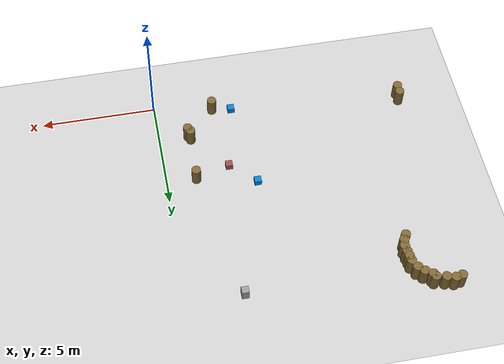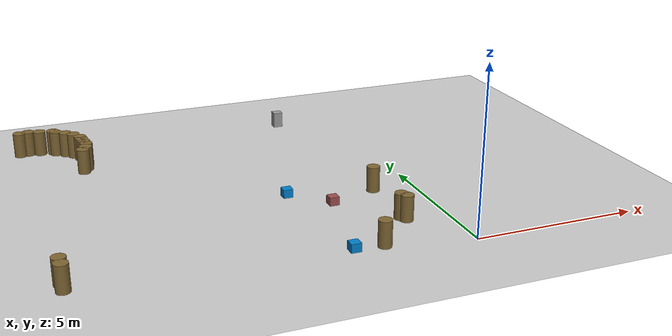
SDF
<sdf version="1.6">
 <world name="default">
  <model name="ground_plane">
   <static>1</static>
   <link name="link">
    <collision name="collision">
     <geometry><plane><normal>0 0 1</normal><size>100 100</size></plane></geometry>
     <surface><friction><ode><mu>100</mu><mu2>50</mu2></ode></friction></surface>
    </collision>
    <visual name="visual">
     <cast_shadows>0</cast_shadows>
     <geometry><plane><normal>0 0 1</normal><size>100 100</size></plane></geometry>
     <material>
      <script><uri>file://media/materials/scripts/gazebo.material</uri><name>Gazebo/Grey</name></script>
     </material>
    </visual>
   </link>
  </model>
  <model name="mini_cylinder_0_clone_0_clone_clone_clone_clone_0">
   <link name="link">
    <inertial>
     <mass>1</mass>
     <inertia><ixx>0.145833</ixx><ixy>0</ixy><ixz>0</ixz><iyy>0.145833</iyy><iyz>0</iyz><izz>0.125</izz></inertia>
    </inertial>
    <visual name="visual">
     <geometry><cylinder><radius>0.2</radius><length>0.8</length></cylinder></geometry>
     <material>
      <script><name>Gazebo/Grey</name><uri>file://media/materials/scripts/gazebo.material</uri></script>
      <shader type="vertex"><normal_map>__default__</normal_map></shader>
      <ambient>0.5 0.4 0.2 1</ambient>
      <diffuse>0.7 0.7 0.7 1</diffuse>
      <specular>0.01 0.01 0.01 1</specular>
      <emissive>0 0 0 1</emissive>
     </material>
    </visual>
    <collision name="collision">
     <geometry><cylinder><radius>0.2</radius><length>0.8</length></cylinder></geometry>
     <surface>
      <friction>
       <ode><mu>1</mu><mu2>1</mu2><fdir1>0 0 0</fdir1><slip1>0</slip1><slip2>0</slip2></ode>
       <torsional>
        <coefficient>1</coefficient>
        <patch_radius>0</patch_radius>
        <surface_radius>0</surface_radius>
        <use_patch_radius>1</use_patch_radius>
        <ode><slip>0</slip></ode>
       </torsional>
      </friction>
      <bounce><restitution_coefficient>0</restitution_coefficient><threshold>1e+06</threshold></bounce>
      <contact>
       <collide_without_contact>0</collide_without_contact>
       <collide_without_contact_bitmask>1</collide_without_contact_bitmask>
       <collide_bitmask>1</collide_bitmask>
       <ode>
        <soft_cfm>0</soft_cfm>
        <soft_erp>0.2</soft_erp>
        <kp>1e+13</kp>
        <kd>1</kd>
        <max_vel>0.01</max_vel>
        <min_depth>0</min_depth>
       </ode>
       <bullet>
        <split_impulse>1</split_impulse>
        <split_impulse_penetration_threshold>-0.01</split_impulse_penetration_threshold>
        <soft_cfm>0</soft_cfm>
        <soft_erp>0.2</soft_erp>
        <kp>1e+13</kp>
        <kd>1</kd>
       </bullet>
      </contact>
     </surface>
    </collision>
   </link>
   <static>1</static>
   <pose>-1.38762 1.98417 0.4 0 -0 0</pose>
  </model>
  <model name="mini_cylinder_0_clone_0_clone_clone_clone_clone_3">
   <link name="link">
    <inertial>
     <mass>1</mass>
     <inertia><ixx>0.145833</ixx><ixy>0</ixy><ixz>0</ixz><iyy>0.145833</iyy><iyz>0</iyz><izz>0.125</izz></inertia>
    </inertial>
    <visual name="visual">
     <geometry><cylinder><radius>0.2</radius><length>0.8</length></cylinder></geometry>
     <material>
      <script><name>Gazebo/Grey</name><uri>file://media/materials/scripts/gazebo.material</uri></script>
      <shader type="vertex"><normal_map>__default__</normal_map></shader>
      <ambient>0.5 0.4 0.2 1</ambient>
      <diffuse>0.7 0.7 0.7 1</diffuse>
      <specular>0.01 0.01 0.01 1</specular>
      <emissive>0 0 0 1</emissive>
     </material>
    </visual>
    <collision name="collision">
     <geometry><cylinder><radius>0.2</radius><length>0.8</length></cylinder></geometry>
     <surface>
      <friction>
       <ode><mu>1</mu><mu2>1</mu2><fdir1>0 0 0</fdir1><slip1>0</slip1><slip2>0</slip2></ode>
       <torsional>
        <coefficient>1</coefficient>
        <patch_radius>0</patch_radius>
        <surface_radius>0</surface_radius>
        <use_patch_radius>1</use_patch_radius>
        <ode><slip>0</slip></ode>
       </torsional>
      </friction>
      <bounce><restitution_coefficient>0</restitution_coefficient><threshold>1e+06</threshold></bounce>
      <contact>
       <collide_without_contact>0</collide_without_contact>
       <collide_without_contact_bitmask>1</collide_without_contact_bitmask>
       <collide_bitmask>1</collide_bitmask>
       <ode>
        <soft_cfm>0</soft_cfm>
        <soft_erp>0.2</soft_erp>
        <kp>1e+13</kp>
        <kd>1</kd>
        <max_vel>0.01</max_vel>
        <min_depth>0</min_depth>
       </ode>
       <bullet>
        <split_impulse>1</split_impulse>
        <split_impulse_penetration_threshold>-0.01</split_impulse_penetration_threshold>
        <soft_cfm>0</soft_cfm>
        <soft_erp>0.2</soft_erp>
        <kp>1e+13</kp>
        <kd>1</kd>
       </bullet>
      </contact>
     </surface>
    </collision>
   </link>
   <static>1</static>
   <pose>-2.5735 0.508666 0.4 0 -0 0</pose>
  </model>
  <model name="mini_cylinder_0_clone_0_clone_clone_clone_clone_13">
   <link name="link">
    <inertial>
     <mass>1</mass>
     <inertia><ixx>0.145833</ixx><ixy>0</ixy><ixz>0</ixz><iyy>0.145833</iyy><iyz>0</iyz><izz>0.125</izz></inertia>
    </inertial>
    <visual name="visual">
     <geometry><cylinder><radius>0.2</radius><length>0.8</length></cylinder></geometry>
     <material>
      <script><name>Gazebo/Grey</name><uri>file://media/materials/scripts/gazebo.material</uri></script>
      <shader type="vertex"><normal_map>__default__</normal_map></shader>
      <ambient>0.5 0.4 0.2 1</ambient>
      <diffuse>0.7 0.7 0.7 1</diffuse>
      <specular>0.01 0.01 0.01 1</specular>
      <emissive>0 0 0 1</emissive>
     </material>
    </visual>
    <collision name="collision">
     <geometry><cylinder><radius>0.2</radius><length>0.8</length></cylinder></geometry>
     <surface>
      <friction>
       <ode><mu>1</mu><mu2>1</mu2><fdir1>0 0 0</fdir1><slip1>0</slip1><slip2>0</slip2></ode>
       <torsional>
        <coefficient>1</coefficient>
        <patch_radius>0</patch_radius>
        <surface_radius>0</surface_radius>
        <use_patch_radius>1</use_patch_radius>
        <ode><slip>0</slip></ode>
       </torsional>
      </friction>
      <bounce><restitution_coefficient>0</restitution_coefficient><threshold>1e+06</threshold></bounce>
      <contact>
       <collide_without_contact>0</collide_without_contact>
       <collide_without_contact_bitmask>1</collide_without_contact_bitmask>
       <collide_bitmask>1</collide_bitmask>
       <ode>
        <soft_cfm>0</soft_cfm>
        <soft_erp>0.2</soft_erp>
        <kp>1e+13</kp>
        <kd>1</kd>
        <max_vel>0.01</max_vel>
        <min_depth>0</min_depth>
       </ode>
       <bullet>
        <split_impulse>1</split_impulse>
        <split_impulse_penetration_threshold>-0.01</split_impulse_penetration_threshold>
        <soft_cfm>0</soft_cfm>
        <soft_erp>0.2</soft_erp>
        <kp>1e+13</kp>
        <kd>1</kd>
       </bullet>
      </contact>
     </surface>
    </collision>
   </link>
   <static>1</static>
   <pose>-1.29879 4.10222 0.4 0 -0 0</pose>
  </model>
  <model name="mini_cylinder_0_clone_0_clone_clone_clone_clone_3_clone_20_clone_12">
   <link name="link">
    <inertial>
     <mass>1</mass>
     <inertia><ixx>0.145833</ixx><ixy>0</ixy><ixz>0</ixz><iyy>0.145833</iyy><iyz>0</iyz><izz>0.125</izz></inertia>
    </inertial>
    <visual name="visual">
     <geometry><cylinder><radius>0.2</radius><length>0.8</length></cylinder></geometry>
     <material>
      <script><name>Gazebo/Grey</name><uri>file://media/materials/scripts/gazebo.material</uri></script>
      <shader type="vertex"><normal_map>__default__</normal_map></shader>
      <ambient>0.5 0.4 0.2 1</ambient>
      <diffuse>0.7 0.7 0.7 1</diffuse>
      <specular>0.01 0.01 0.01 1</specular>
      <emissive>0 0 0 1</emissive>
     </material>
    </visual>
    <collision name="collision">
     <geometry><cylinder><radius>0.2</radius><length>0.8</length></cylinder></geometry>
     <surface>
      <friction>
       <ode><mu>1</mu><mu2>1</mu2><fdir1>0 0 0</fdir1><slip1>0</slip1><slip2>0</slip2></ode>
       <torsional>
        <coefficient>1</coefficient>
        <patch_radius>0</patch_radius>
        <surface_radius>0</surface_radius>
        <use_patch_radius>1</use_patch_radius>
        <ode><slip>0</slip></ode>
       </torsional>
      </friction>
      <bounce><restitution_coefficient>0</restitution_coefficient><threshold>1e+06</threshold></bounce>
      <contact>
       <collide_without_contact>0</collide_without_contact>
       <collide_without_contact_bitmask>1</collide_without_contact_bitmask>
       <collide_bitmask>1</collide_bitmask>
       <ode>
        <soft_cfm>0</soft_cfm>
        <soft_erp>0.2</soft_erp>
        <kp>1e+13</kp>
        <kd>1</kd>
        <max_vel>0.01</max_vel>
        <min_depth>0</min_depth>
       </ode>
       <bullet>
        <split_impulse>1</split_impulse>
        <split_impulse_penetration_threshold>-0.01</split_impulse_penetration_threshold>
        <soft_cfm>0</soft_cfm>
        <soft_erp>0.2</soft_erp>
        <kp>1e+13</kp>
        <kd>1</kd>
       </bullet>
      </contact>
     </surface>
    </collision>
   </link>
   <static>1</static>
   <pose>-11.0079 1.12482 0.4 0 -0 0</pose>
  </model>
  <model name="mini_cylinder_0_clone_0_clone_clone_clone_clone_3_clone_20_clone_13">
   <link name="link">
    <inertial>
     <mass>1</mass>
     <inertia><ixx>0.145833</ixx><ixy>0</ixy><ixz>0</ixz><iyy>0.145833</iyy><iyz>0</iyz><izz>0.125</izz></inertia>
    </inertial>
    <visual name="visual">
     <geometry><cylinder><radius>0.2</radius><length>0.8</length></cylinder></geometry>
     <material>
      <script><name>Gazebo/Grey</name><uri>file://media/materials/scripts/gazebo.material</uri></script>
      <shader type="vertex"><normal_map>__default__</normal_map></shader>
      <ambient>0.5 0.4 0.2 1</ambient>
      <diffuse>0.7 0.7 0.7 1</diffuse>
      <specular>0.01 0.01 0.01 1</specular>
      <emissive>0 0 0 1</emissive>
     </material>
    </visual>
    <collision name="collision">
     <geometry><cylinder><radius>0.2</radius><length>0.8</length></cylinder></geometry>
     <surface>
      <friction>
       <ode><mu>1</mu><mu2>1</mu2><fdir1>0 0 0</fdir1><slip1>0</slip1><slip2>0</slip2></ode>
       <torsional>
        <coefficient>1</coefficient>
        <patch_radius>0</patch_radius>
        <surface_radius>0</surface_radius>
        <use_patch_radius>1</use_patch_radius>
        <ode><slip>0</slip></ode>
       </torsional>
      </friction>
      <bounce><restitution_coefficient>0</restitution_coefficient><threshold>1e+06</threshold></bounce>
      <contact>
       <collide_without_contact>0</collide_without_contact>
       <collide_without_contact_bitmask>1</collide_without_contact_bitmask>
       <collide_bitmask>1</collide_bitmask>
       <ode>
        <soft_cfm>0</soft_cfm>
        <soft_erp>0.2</soft_erp>
        <kp>1e+13</kp>
        <kd>1</kd>
        <max_vel>0.01</max_vel>
        <min_depth>0</min_depth>
       </ode>
       <bullet>
        <split_impulse>1</split_impulse>
        <split_impulse_penetration_threshold>-0.01</split_impulse_penetration_threshold>
        <soft_cfm>0</soft_cfm>
        <soft_erp>0.2</soft_erp>
        <kp>1e+13</kp>
        <kd>1</kd>
       </bullet>
      </contact>
     </surface>
    </collision>
   </link>
   <static>1</static>
   <pose>-11.0137 1.48252 0.4 0 -0 0</pose>
  </model>
  <model name="mini_cylinder_0_clone_0_clone_clone_clone_clone_3_clone_20_clone_67">
   <link name="link">
    <inertial>
     <mass>1</mass>
     <inertia><ixx>0.145833</ixx><ixy>0</ixy><ixz>0</ixz><iyy>0.145833</iyy><iyz>0</iyz><izz>0.125</izz></inertia>
    </inertial>
    <visual name="visual">
     <geometry><cylinder><radius>0.2</radius><length>0.8</length></cylinder></geometry>
     <material>
      <script><name>Gazebo/Grey</name><uri>file://media/materials/scripts/gazebo.material</uri></script>
      <shader type="vertex"><normal_map>__default__</normal_map></shader>
      <ambient>0.5 0.4 0.2 1</ambient>
      <diffuse>0.7 0.7 0.7 1</diffuse>
      <specular>0.01 0.01 0.01 1</specular>
      <emissive>0 0 0 1</emissive>
     </material>
    </visual>
    <collision name="collision">
     <geometry><cylinder><radius>0.2</radius><length>0.8</length></cylinder></geometry>
     <surface>
      <friction>
       <ode><mu>1</mu><mu2>1</mu2><fdir1>0 0 0</fdir1><slip1>0</slip1><slip2>0</slip2></ode>
       <torsional>
        <coefficient>1</coefficient>
        <patch_radius>0</patch_radius>
        <surface_radius>0</surface_radius>
        <use_patch_radius>1</use_patch_radius>
        <ode><slip>0</slip></ode>
       </torsional>
      </friction>
      <bounce><restitution_coefficient>0</restitution_coefficient><threshold>1e+06</threshold></bounce>
      <contact>
       <collide_without_contact>0</collide_without_contact>
       <collide_without_contact_bitmask>1</collide_without_contact_bitmask>
       <collide_bitmask>1</collide_bitmask>
       <ode>
        <soft_cfm>0</soft_cfm>
        <soft_erp>0.2</soft_erp>
        <kp>1e+13</kp>
        <kd>1</kd>
        <max_vel>0.01</max_vel>
        <min_depth>0</min_depth>
       </ode>
       <bullet>
        <split_impulse>1</split_impulse>
        <split_impulse_penetration_threshold>-0.01</split_impulse_penetration_threshold>
        <soft_cfm>0</soft_cfm>
        <soft_erp>0.2</soft_erp>
        <kp>1e+13</kp>
        <kd>1</kd>
       </bullet>
      </contact>
     </surface>
    </collision>
   </link>
   <static>1</static>
   <pose>-9.17055 10.0028 0.4 0 -0 0</pose>
  </model>
  <model name="mini_cylinder_0_clone_0_clone_clone_clone_clone_3_clone_20_clone_68">
   <link name="link">
    <inertial>
     <mass>1</mass>
     <inertia><ixx>0.145833</ixx><ixy>0</ixy><ixz>0</ixz><iyy>0.145833</iyy><iyz>0</iyz><izz>0.125</izz></inertia>
    </inertial>
    <visual name="visual">
     <geometry><cylinder><radius>0.2</radius><length>0.8</length></cylinder></geometry>
     <material>
      <script><name>Gazebo/Grey</name><uri>file://media/materials/scripts/gazebo.material</uri></script>
      <shader type="vertex"><normal_map>__default__</normal_map></shader>
      <ambient>0.5 0.4 0.2 1</ambient>
      <diffuse>0.7 0.7 0.7 1</diffuse>
      <specular>0.01 0.01 0.01 1</specular>
      <emissive>0 0 0 1</emissive>
     </material>
    </visual>
    <collision name="collision">
     <geometry><cylinder><radius>0.2</radius><length>0.8</length></cylinder></geometry>
     <surface>
      <friction>
       <ode><mu>1</mu><mu2>1</mu2><fdir1>0 0 0</fdir1><slip1>0</slip1><slip2>0</slip2></ode>
       <torsional>
        <coefficient>1</coefficient>
        <patch_radius>0</patch_radius>
        <surface_radius>0</surface_radius>
        <use_patch_radius>1</use_patch_radius>
        <ode><slip>0</slip></ode>
       </torsional>
      </friction>
      <bounce><restitution_coefficient>0</restitution_coefficient><threshold>1e+06</threshold></bounce>
      <contact>
       <collide_without_contact>0</collide_without_contact>
       <collide_without_contact_bitmask>1</collide_without_contact_bitmask>
       <collide_bitmask>1</collide_bitmask>
       <ode>
        <soft_cfm>0</soft_cfm>
        <soft_erp>0.2</soft_erp>
        <kp>1e+13</kp>
        <kd>1</kd>
        <max_vel>0.01</max_vel>
        <min_depth>0</min_depth>
       </ode>
       <bullet>
        <split_impulse>1</split_impulse>
        <split_impulse_penetration_threshold>-0.01</split_impulse_penetration_threshold>
        <soft_cfm>0</soft_cfm>
        <soft_erp>0.2</soft_erp>
        <kp>1e+13</kp>
        <kd>1</kd>
       </bullet>
      </contact>
     </surface>
    </collision>
   </link>
   <static>1</static>
   <pose>-9.33863 10.3265 0.4 0 -0 0</pose>
  </model>
  <model name="mini_cylinder_0_clone_0_clone_clone_clone_clone_3_clone_20_clone_69">
   <link name="link">
    <inertial>
     <mass>1</mass>
     <inertia><ixx>0.145833</ixx><ixy>0</ixy><ixz>0</ixz><iyy>0.145833</iyy><iyz>0</iyz><izz>0.125</izz></inertia>
    </inertial>
    <visual name="visual">
     <geometry><cylinder><radius>0.2</radius><length>0.8</length></cylinder></geometry>
     <material>
      <script><name>Gazebo/Grey</name><uri>file://media/materials/scripts/gazebo.material</uri></script>
      <shader type="vertex"><normal_map>__default__</normal_map></shader>
      <ambient>0.5 0.4 0.2 1</ambient>
      <diffuse>0.7 0.7 0.7 1</diffuse>
      <specular>0.01 0.01 0.01 1</specular>
      <emissive>0 0 0 1</emissive>
     </material>
    </visual>
    <collision name="collision">
     <geometry><cylinder><radius>0.2</radius><length>0.8</length></cylinder></geometry>
     <surface>
      <friction>
       <ode><mu>1</mu><mu2>1</mu2><fdir1>0 0 0</fdir1><slip1>0</slip1><slip2>0</slip2></ode>
       <torsional>
        <coefficient>1</coefficient>
        <patch_radius>0</patch_radius>
        <surface_radius>0</surface_radius>
        <use_patch_radius>1</use_patch_radius>
        <ode><slip>0</slip></ode>
       </torsional>
      </friction>
      <bounce><restitution_coefficient>0</restitution_coefficient><threshold>1e+06</threshold></bounce>
      <contact>
       <collide_without_contact>0</collide_without_contact>
       <collide_without_contact_bitmask>1</collide_without_contact_bitmask>
       <collide_bitmask>1</collide_bitmask>
       <ode>
        <soft_cfm>0</soft_cfm>
        <soft_erp>0.2</soft_erp>
        <kp>1e+13</kp>
        <kd>1</kd>
        <max_vel>0.01</max_vel>
        <min_depth>0</min_depth>
       </ode>
       <bullet>
        <split_impulse>1</split_impulse>
        <split_impulse_penetration_threshold>-0.01</split_impulse_penetration_threshold>
        <soft_cfm>0</soft_cfm>
        <soft_erp>0.2</soft_erp>
        <kp>1e+13</kp>
        <kd>1</kd>
       </bullet>
      </contact>
     </surface>
    </collision>
   </link>
   <static>1</static>
   <pose>-9.57017 10.5508 0.4 0 -0 0</pose>
  </model>
  <model name="mini_cylinder_0_clone_0_clone_clone_clone_clone_3_clone_20_clone_70">
   <link name="link">
    <inertial>
     <mass>1</mass>
     <inertia><ixx>0.145833</ixx><ixy>0</ixy><ixz>0</ixz><iyy>0.145833</iyy><iyz>0</iyz><izz>0.125</izz></inertia>
    </inertial>
    <visual name="visual">
     <geometry><cylinder><radius>0.2</radius><length>0.8</length></cylinder></geometry>
     <material>
      <script><name>Gazebo/Grey</name><uri>file://media/materials/scripts/gazebo.material</uri></script>
      <shader type="vertex"><normal_map>__default__</normal_map></shader>
      <ambient>0.5 0.4 0.2 1</ambient>
      <diffuse>0.7 0.7 0.7 1</diffuse>
      <specular>0.01 0.01 0.01 1</specular>
      <emissive>0 0 0 1</emissive>
     </material>
    </visual>
    <collision name="collision">
     <geometry><cylinder><radius>0.2</radius><length>0.8</length></cylinder></geometry>
     <surface>
      <friction>
       <ode><mu>1</mu><mu2>1</mu2><fdir1>0 0 0</fdir1><slip1>0</slip1><slip2>0</slip2></ode>
       <torsional>
        <coefficient>1</coefficient>
        <patch_radius>0</patch_radius>
        <surface_radius>0</surface_radius>
        <use_patch_radius>1</use_patch_radius>
        <ode><slip>0</slip></ode>
       </torsional>
      </friction>
      <bounce><restitution_coefficient>0</restitution_coefficient><threshold>1e+06</threshold></bounce>
      <contact>
       <collide_without_contact>0</collide_without_contact>
       <collide_without_contact_bitmask>1</collide_without_contact_bitmask>
       <collide_bitmask>1</collide_bitmask>
       <ode>
        <soft_cfm>0</soft_cfm>
        <soft_erp>0.2</soft_erp>
        <kp>1e+13</kp>
        <kd>1</kd>
        <max_vel>0.01</max_vel>
        <min_depth>0</min_depth>
       </ode>
       <bullet>
        <split_impulse>1</split_impulse>
        <split_impulse_penetration_threshold>-0.01</split_impulse_penetration_threshold>
        <soft_cfm>0</soft_cfm>
        <soft_erp>0.2</soft_erp>
        <kp>1e+13</kp>
        <kd>1</kd>
       </bullet>
      </contact>
     </surface>
    </collision>
   </link>
   <static>1</static>
   <pose>-9.93318 10.8706 0.4 0 -0 0</pose>
  </model>
  <model name="mini_cylinder_0_clone_0_clone_clone_clone_clone_3_clone_20_clone_71">
   <link name="link">
    <inertial>
     <mass>1</mass>
     <inertia><ixx>0.145833</ixx><ixy>0</ixy><ixz>0</ixz><iyy>0.145833</iyy><iyz>0</iyz><izz>0.125</izz></inertia>
    </inertial>
    <visual name="visual">
     <geometry><cylinder><radius>0.2</radius><length>0.8</length></cylinder></geometry>
     <material>
      <script><name>Gazebo/Grey</name><uri>file://media/materials/scripts/gazebo.material</uri></script>
      <shader type="vertex"><normal_map>__default__</normal_map></shader>
      <ambient>0.5 0.4 0.2 1</ambient>
      <diffuse>0.7 0.7 0.7 1</diffuse>
      <specular>0.01 0.01 0.01 1</specular>
      <emissive>0 0 0 1</emissive>
     </material>
    </visual>
    <collision name="collision">
     <geometry><cylinder><radius>0.2</radius><length>0.8</length></cylinder></geometry>
     <surface>
      <friction>
       <ode><mu>1</mu><mu2>1</mu2><fdir1>0 0 0</fdir1><slip1>0</slip1><slip2>0</slip2></ode>
       <torsional>
        <coefficient>1</coefficient>
        <patch_radius>0</patch_radius>
        <surface_radius>0</surface_radius>
        <use_patch_radius>1</use_patch_radius>
        <ode><slip>0</slip></ode>
       </torsional>
      </friction>
      <bounce><restitution_coefficient>0</restitution_coefficient><threshold>1e+06</threshold></bounce>
      <contact>
       <collide_without_contact>0</collide_without_contact>
       <collide_without_contact_bitmask>1</collide_without_contact_bitmask>
       <collide_bitmask>1</collide_bitmask>
       <ode>
        <soft_cfm>0</soft_cfm>
        <soft_erp>0.2</soft_erp>
        <kp>1e+13</kp>
        <kd>1</kd>
        <max_vel>0.01</max_vel>
        <min_depth>0</min_depth>
       </ode>
       <bullet>
        <split_impulse>1</split_impulse>
        <split_impulse_penetration_threshold>-0.01</split_impulse_penetration_threshold>
        <soft_cfm>0</soft_cfm>
        <soft_erp>0.2</soft_erp>
        <kp>1e+13</kp>
        <kd>1</kd>
       </bullet>
      </contact>
     </surface>
    </collision>
   </link>
   <static>1</static>
   <pose>-9.86597 10.7414 0.4 0 -0 0</pose>
  </model>
  <model name="mini_cylinder_0_clone_0_clone_clone_clone_clone_3_clone_20_clone_72">
   <link name="link">
    <inertial>
     <mass>1</mass>
     <inertia><ixx>0.145833</ixx><ixy>0</ixy><ixz>0</ixz><iyy>0.145833</iyy><iyz>0</iyz><izz>0.125</izz></inertia>
    </inertial>
    <visual name="visual">
     <geometry><cylinder><radius>0.2</radius><length>0.8</length></cylinder></geometry>
     <material>
      <script><name>Gazebo/Grey</name><uri>file://media/materials/scripts/gazebo.material</uri></script>
      <shader type="vertex"><normal_map>__default__</normal_map></shader>
      <ambient>0.5 0.4 0.2 1</ambient>
      <diffuse>0.7 0.7 0.7 1</diffuse>
      <specular>0.01 0.01 0.01 1</specular>
      <emissive>0 0 0 1</emissive>
     </material>
    </visual>
    <collision name="collision">
     <geometry><cylinder><radius>0.2</radius><length>0.8</length></cylinder></geometry>
     <surface>
      <friction>
       <ode><mu>1</mu><mu2>1</mu2><fdir1>0 0 0</fdir1><slip1>0</slip1><slip2>0</slip2></ode>
       <torsional>
        <coefficient>1</coefficient>
        <patch_radius>0</patch_radius>
        <surface_radius>0</surface_radius>
        <use_patch_radius>1</use_patch_radius>
        <ode><slip>0</slip></ode>
       </torsional>
      </friction>
      <bounce><restitution_coefficient>0</restitution_coefficient><threshold>1e+06</threshold></bounce>
      <contact>
       <collide_without_contact>0</collide_without_contact>
       <collide_without_contact_bitmask>1</collide_without_contact_bitmask>
       <collide_bitmask>1</collide_bitmask>
       <ode>
        <soft_cfm>0</soft_cfm>
        <soft_erp>0.2</soft_erp>
        <kp>1e+13</kp>
        <kd>1</kd>
        <max_vel>0.01</max_vel>
        <min_depth>0</min_depth>
       </ode>
       <bullet>
        <split_impulse>1</split_impulse>
        <split_impulse_penetration_threshold>-0.01</split_impulse_penetration_threshold>
        <soft_cfm>0</soft_cfm>
        <soft_erp>0.2</soft_erp>
        <kp>1e+13</kp>
        <kd>1</kd>
       </bullet>
      </contact>
     </surface>
    </collision>
   </link>
   <static>1</static>
   <pose>-10.3575 10.9616 0.4 0 -0 0</pose>
  </model>
  <model name="mini_cylinder_0_clone_0_clone_clone_clone_clone_3_clone_20_clone_73">
   <link name="link">
    <inertial>
     <mass>1</mass>
     <inertia><ixx>0.145833</ixx><ixy>0</ixy><ixz>0</ixz><iyy>0.145833</iyy><iyz>0</iyz><izz>0.125</izz></inertia>
    </inertial>
    <visual name="visual">
     <geometry><cylinder><radius>0.2</radius><length>0.8</length></cylinder></geometry>
     <material>
      <script><name>Gazebo/Grey</name><uri>file://media/materials/scripts/gazebo.material</uri></script>
      <shader type="vertex"><normal_map>__default__</normal_map></shader>
      <ambient>0.5 0.4 0.2 1</ambient>
      <diffuse>0.7 0.7 0.7 1</diffuse>
      <specular>0.01 0.01 0.01 1</specular>
      <emissive>0 0 0 1</emissive>
     </material>
    </visual>
    <collision name="collision">
     <geometry><cylinder><radius>0.2</radius><length>0.8</length></cylinder></geometry>
     <surface>
      <friction>
       <ode><mu>1</mu><mu2>1</mu2><fdir1>0 0 0</fdir1><slip1>0</slip1><slip2>0</slip2></ode>
       <torsional>
        <coefficient>1</coefficient>
        <patch_radius>0</patch_radius>
        <surface_radius>0</surface_radius>
        <use_patch_radius>1</use_patch_radius>
        <ode><slip>0</slip></ode>
       </torsional>
      </friction>
      <bounce><restitution_coefficient>0</restitution_coefficient><threshold>1e+06</threshold></bounce>
      <contact>
       <collide_without_contact>0</collide_without_contact>
       <collide_without_contact_bitmask>1</collide_without_contact_bitmask>
       <collide_bitmask>1</collide_bitmask>
       <ode>
        <soft_cfm>0</soft_cfm>
        <soft_erp>0.2</soft_erp>
        <kp>1e+13</kp>
        <kd>1</kd>
        <max_vel>0.01</max_vel>
        <min_depth>0</min_depth>
       </ode>
       <bullet>
        <split_impulse>1</split_impulse>
        <split_impulse_penetration_threshold>-0.01</split_impulse_penetration_threshold>
        <soft_cfm>0</soft_cfm>
        <soft_erp>0.2</soft_erp>
        <kp>1e+13</kp>
        <kd>1</kd>
       </bullet>
      </contact>
     </surface>
    </collision>
   </link>
   <static>1</static>
   <pose>-10.7169 11.0528 0.4 0 -0 0</pose>
  </model>
  <model name="mini_cylinder_0_clone_0_clone_clone_clone_clone_3_clone_20_clone_74">
   <link name="link">
    <inertial>
     <mass>1</mass>
     <inertia><ixx>0.145833</ixx><ixy>0</ixy><ixz>0</ixz><iyy>0.145833</iyy><iyz>0</iyz><izz>0.125</izz></inertia>
    </inertial>
    <visual name="visual">
     <geometry><cylinder><radius>0.2</radius><length>0.8</length></cylinder></geometry>
     <material>
      <script><name>Gazebo/Grey</name><uri>file://media/materials/scripts/gazebo.material</uri></script>
      <shader type="vertex"><normal_map>__default__</normal_map></shader>
      <ambient>0.5 0.4 0.2 1</ambient>
      <diffuse>0.7 0.7 0.7 1</diffuse>
      <specular>0.01 0.01 0.01 1</specular>
      <emissive>0 0 0 1</emissive>
     </material>
    </visual>
    <collision name="collision">
     <geometry><cylinder><radius>0.2</radius><length>0.8</length></cylinder></geometry>
     <surface>
      <friction>
       <ode><mu>1</mu><mu2>1</mu2><fdir1>0 0 0</fdir1><slip1>0</slip1><slip2>0</slip2></ode>
       <torsional>
        <coefficient>1</coefficient>
        <patch_radius>0</patch_radius>
        <surface_radius>0</surface_radius>
        <use_patch_radius>1</use_patch_radius>
        <ode><slip>0</slip></ode>
       </torsional>
      </friction>
      <bounce><restitution_coefficient>0</restitution_coefficient><threshold>1e+06</threshold></bounce>
      <contact>
       <collide_without_contact>0</collide_without_contact>
       <collide_without_contact_bitmask>1</collide_without_contact_bitmask>
       <collide_bitmask>1</collide_bitmask>
       <ode>
        <soft_cfm>0</soft_cfm>
        <soft_erp>0.2</soft_erp>
        <kp>1e+13</kp>
        <kd>1</kd>
        <max_vel>0.01</max_vel>
        <min_depth>0</min_depth>
       </ode>
       <bullet>
        <split_impulse>1</split_impulse>
        <split_impulse_penetration_threshold>-0.01</split_impulse_penetration_threshold>
        <soft_cfm>0</soft_cfm>
        <soft_erp>0.2</soft_erp>
        <kp>1e+13</kp>
        <kd>1</kd>
       </bullet>
      </contact>
     </surface>
    </collision>
   </link>
   <static>1</static>
   <pose>-11 11 0.4 0 -0 0</pose>
  </model>
  <model name="mini_cylinder_0_clone_0_clone_clone_clone_clone_3_clone_20_clone_97">
   <link name="link">
    <inertial>
     <mass>1</mass>
     <inertia><ixx>0.145833</ixx><ixy>0</ixy><ixz>0</ixz><iyy>0.145833</iyy><iyz>0</iyz><izz>0.125</izz></inertia>
    </inertial>
    <visual name="visual">
     <geometry><cylinder><radius>0.2</radius><length>0.8</length></cylinder></geometry>
     <material>
      <script><name>Gazebo/Grey</name><uri>file://media/materials/scripts/gazebo.material</uri></script>
      <shader type="vertex"><normal_map>__default__</normal_map></shader>
      <ambient>0.5 0.4 0.2 1</ambient>
      <diffuse>0.7 0.7 0.7 1</diffuse>
      <specular>0.01 0.01 0.01 1</specular>
      <emissive>0 0 0 1</emissive>
     </material>
    </visual>
    <collision name="collision">
     <geometry><cylinder><radius>0.2</radius><length>0.8</length></cylinder></geometry>
     <surface>
      <friction>
       <ode><mu>1</mu><mu2>1</mu2><fdir1>0 0 0</fdir1><slip1>0</slip1><slip2>0</slip2></ode>
       <torsional>
        <coefficient>1</coefficient>
        <patch_radius>0</patch_radius>
        <surface_radius>0</surface_radius>
        <use_patch_radius>1</use_patch_radius>
        <ode><slip>0</slip></ode>
       </torsional>
      </friction>
      <bounce><restitution_coefficient>0</restitution_coefficient><threshold>1e+06</threshold></bounce>
      <contact>
       <collide_without_contact>0</collide_without_contact>
       <collide_without_contact_bitmask>1</collide_without_contact_bitmask>
       <collide_bitmask>1</collide_bitmask>
       <ode>
        <soft_cfm>0</soft_cfm>
        <soft_erp>0.2</soft_erp>
        <kp>1e+13</kp>
        <kd>1</kd>
        <max_vel>0.01</max_vel>
        <min_depth>0</min_depth>
       </ode>
       <bullet>
        <split_impulse>1</split_impulse>
        <split_impulse_penetration_threshold>-0.01</split_impulse_penetration_threshold>
        <soft_cfm>0</soft_cfm>
        <soft_erp>0.2</soft_erp>
        <kp>1e+13</kp>
        <kd>1</kd>
       </bullet>
      </contact>
     </surface>
    </collision>
   </link>
   <static>1</static>
   <pose>-9.1451 9.78077 0.4 0 -0 0</pose>
  </model>
  <model name="mini_cylinder_0_clone_0_clone_clone_clone_clone_3_clone_20_clone_98">
   <link name="link">
    <inertial>
     <mass>1</mass>
     <inertia><ixx>0.145833</ixx><ixy>0</ixy><ixz>0</ixz><iyy>0.145833</iyy><iyz>0</iyz><izz>0.125</izz></inertia>
    </inertial>
    <visual name="visual">
     <geometry><cylinder><radius>0.2</radius><length>0.8</length></cylinder></geometry>
     <material>
      <script><name>Gazebo/Grey</name><uri>file://media/materials/scripts/gazebo.material</uri></script>
      <shader type="vertex"><normal_map>__default__</normal_map></shader>
      <ambient>0.5 0.4 0.2 1</ambient>
      <diffuse>0.7 0.7 0.7 1</diffuse>
      <specular>0.01 0.01 0.01 1</specular>
      <emissive>0 0 0 1</emissive>
     </material>
    </visual>
    <collision name="collision">
     <geometry><cylinder><radius>0.2</radius><length>0.8</length></cylinder></geometry>
     <surface>
      <friction>
       <ode><mu>1</mu><mu2>1</mu2><fdir1>0 0 0</fdir1><slip1>0</slip1><slip2>0</slip2></ode>
       <torsional>
        <coefficient>1</coefficient>
        <patch_radius>0</patch_radius>
        <surface_radius>0</surface_radius>
        <use_patch_radius>1</use_patch_radius>
        <ode><slip>0</slip></ode>
       </torsional>
      </friction>
      <bounce><restitution_coefficient>0</restitution_coefficient><threshold>1e+06</threshold></bounce>
      <contact>
       <collide_without_contact>0</collide_without_contact>
       <collide_without_contact_bitmask>1</collide_without_contact_bitmask>
       <collide_bitmask>1</collide_bitmask>
       <ode>
        <soft_cfm>0</soft_cfm>
        <soft_erp>0.2</soft_erp>
        <kp>1e+13</kp>
        <kd>1</kd>
        <max_vel>0.01</max_vel>
        <min_depth>0</min_depth>
       </ode>
       <bullet>
        <split_impulse>1</split_impulse>
        <split_impulse_penetration_threshold>-0.01</split_impulse_penetration_threshold>
        <soft_cfm>0</soft_cfm>
        <soft_erp>0.2</soft_erp>
        <kp>1e+13</kp>
        <kd>1</kd>
       </bullet>
      </contact>
     </surface>
    </collision>
   </link>
   <static>1</static>
   <pose>-9.11435 9.55868 0.4 0 -0 0</pose>
  </model>
  <model name="mini_cylinder_0_clone_0_clone_clone_clone_clone_3_clone_20_clone_99">
   <link name="link">
    <inertial>
     <mass>1</mass>
     <inertia><ixx>0.145833</ixx><ixy>0</ixy><ixz>0</ixz><iyy>0.145833</iyy><iyz>0</iyz><izz>0.125</izz></inertia>
    </inertial>
    <visual name="visual">
     <geometry><cylinder><radius>0.2</radius><length>0.8</length></cylinder></geometry>
     <material>
      <script><name>Gazebo/Grey</name><uri>file://media/materials/scripts/gazebo.material</uri></script>
      <shader type="vertex"><normal_map>__default__</normal_map></shader>
      <ambient>0.5 0.4 0.2 1</ambient>
      <diffuse>0.7 0.7 0.7 1</diffuse>
      <specular>0.01 0.01 0.01 1</specular>
      <emissive>0 0 0 1</emissive>
     </material>
    </visual>
    <collision name="collision">
     <geometry><cylinder><radius>0.2</radius><length>0.8</length></cylinder></geometry>
     <surface>
      <friction>
       <ode><mu>1</mu><mu2>1</mu2><fdir1>0 0 0</fdir1><slip1>0</slip1><slip2>0</slip2></ode>
       <torsional>
        <coefficient>1</coefficient>
        <patch_radius>0</patch_radius>
        <surface_radius>0</surface_radius>
        <use_patch_radius>1</use_patch_radius>
        <ode><slip>0</slip></ode>
       </torsional>
      </friction>
      <bounce><restitution_coefficient>0</restitution_coefficient><threshold>1e+06</threshold></bounce>
      <contact>
       <collide_without_contact>0</collide_without_contact>
       <collide_without_contact_bitmask>1</collide_without_contact_bitmask>
       <collide_bitmask>1</collide_bitmask>
       <ode>
        <soft_cfm>0</soft_cfm>
        <soft_erp>0.2</soft_erp>
        <kp>1e+13</kp>
        <kd>1</kd>
        <max_vel>0.01</max_vel>
        <min_depth>0</min_depth>
       </ode>
       <bullet>
        <split_impulse>1</split_impulse>
        <split_impulse_penetration_threshold>-0.01</split_impulse_penetration_threshold>
        <soft_cfm>0</soft_cfm>
        <soft_erp>0.2</soft_erp>
        <kp>1e+13</kp>
        <kd>1</kd>
       </bullet>
      </contact>
     </surface>
    </collision>
   </link>
   <static>1</static>
   <pose>-9.07853 9.29885 0.4 0 -0 0</pose>
  </model>
  <model name="mini_cylinder_0_clone_0_clone_clone_clone_clone_3_clone_20_clone_100">
   <link name="link">
    <inertial>
     <mass>1</mass>
     <inertia><ixx>0.145833</ixx><ixy>0</ixy><ixz>0</ixz><iyy>0.145833</iyy><iyz>0</iyz><izz>0.125</izz></inertia>
    </inertial>
    <visual name="visual">
     <geometry><cylinder><radius>0.2</radius><length>0.8</length></cylinder></geometry>
     <material>
      <script><name>Gazebo/Grey</name><uri>file://media/materials/scripts/gazebo.material</uri></script>
      <shader type="vertex"><normal_map>__default__</normal_map></shader>
      <ambient>0.5 0.4 0.2 1</ambient>
      <diffuse>0.7 0.7 0.7 1</diffuse>
      <specular>0.01 0.01 0.01 1</specular>
      <emissive>0 0 0 1</emissive>
     </material>
    </visual>
    <collision name="collision">
     <geometry><cylinder><radius>0.2</radius><length>0.8</length></cylinder></geometry>
     <surface>
      <friction>
       <ode><mu>1</mu><mu2>1</mu2><fdir1>0 0 0</fdir1><slip1>0</slip1><slip2>0</slip2></ode>
       <torsional>
        <coefficient>1</coefficient>
        <patch_radius>0</patch_radius>
        <surface_radius>0</surface_radius>
        <use_patch_radius>1</use_patch_radius>
        <ode><slip>0</slip></ode>
       </torsional>
      </friction>
      <bounce><restitution_coefficient>0</restitution_coefficient><threshold>1e+06</threshold></bounce>
      <contact>
       <collide_without_contact>0</collide_without_contact>
       <collide_without_contact_bitmask>1</collide_without_contact_bitmask>
       <collide_bitmask>1</collide_bitmask>
       <ode>
        <soft_cfm>0</soft_cfm>
        <soft_erp>0.2</soft_erp>
        <kp>1e+13</kp>
        <kd>1</kd>
        <max_vel>0.01</max_vel>
        <min_depth>0</min_depth>
       </ode>
       <bullet>
        <split_impulse>1</split_impulse>
        <split_impulse_penetration_threshold>-0.01</split_impulse_penetration_threshold>
        <soft_cfm>0</soft_cfm>
        <soft_erp>0.2</soft_erp>
        <kp>1e+13</kp>
        <kd>1</kd>
       </bullet>
      </contact>
     </surface>
    </collision>
   </link>
   <static>1</static>
   <pose>-9.13853 9.0047 0.4 0 -0 0</pose>
  </model>
  <model name="mini_cylinder_0_clone_0_clone_clone_clone_clone_3_clone_20_clone_101">
   <link name="link">
    <inertial>
     <mass>1</mass>
     <inertia><ixx>0.145833</ixx><ixy>0</ixy><ixz>0</ixz><iyy>0.145833</iyy><iyz>0</iyz><izz>0.125</izz></inertia>
    </inertial>
    <visual name="visual">
     <geometry><cylinder><radius>0.2</radius><length>0.8</length></cylinder></geometry>
     <material>
      <script><name>Gazebo/Grey</name><uri>file://media/materials/scripts/gazebo.material</uri></script>
      <shader type="vertex"><normal_map>__default__</normal_map></shader>
      <ambient>0.5 0.4 0.2 1</ambient>
      <diffuse>0.7 0.7 0.7 1</diffuse>
      <specular>0.01 0.01 0.01 1</specular>
      <emissive>0 0 0 1</emissive>
     </material>
    </visual>
    <collision name="collision">
     <geometry><cylinder><radius>0.2</radius><length>0.8</length></cylinder></geometry>
     <surface>
      <friction>
       <ode><mu>1</mu><mu2>1</mu2><fdir1>0 0 0</fdir1><slip1>0</slip1><slip2>0</slip2></ode>
       <torsional>
        <coefficient>1</coefficient>
        <patch_radius>0</patch_radius>
        <surface_radius>0</surface_radius>
        <use_patch_radius>1</use_patch_radius>
        <ode><slip>0</slip></ode>
       </torsional>
      </friction>
      <bounce><restitution_coefficient>0</restitution_coefficient><threshold>1e+06</threshold></bounce>
      <contact>
       <collide_without_contact>0</collide_without_contact>
       <collide_without_contact_bitmask>1</collide_without_contact_bitmask>
       <collide_bitmask>1</collide_bitmask>
       <ode>
        <soft_cfm>0</soft_cfm>
        <soft_erp>0.2</soft_erp>
        <kp>1e+13</kp>
        <kd>1</kd>
        <max_vel>0.01</max_vel>
        <min_depth>0</min_depth>
       </ode>
       <bullet>
        <split_impulse>1</split_impulse>
        <split_impulse_penetration_threshold>-0.01</split_impulse_penetration_threshold>
        <soft_cfm>0</soft_cfm>
        <soft_erp>0.2</soft_erp>
        <kp>1e+13</kp>
        <kd>1</kd>
       </bullet>
      </contact>
     </surface>
    </collision>
   </link>
   <static>1</static>
   <pose>-9.26473 8.77411 0.4 0 -0 0</pose>
  </model>
  <model name="unit_box_0.3">
   <link name="link">
    <inertial>
     <mass>1</mass>
     <inertia>
      <ixx>0.166667</ixx>
      <ixy>0</ixy>
      <ixz>0</ixz>
      <iyy>0.166667</iyy>
      <iyz>0</iyz>
      <izz>0.166667</izz>
     </inertia>
    </inertial>
    <visual name="visual">
     <geometry><box><size>0.3 0.3 0.5</size></box></geometry>
     <material>
      <script><name>Gazebo/Grey</name><uri>file://media/materials/scripts/gazebo.material</uri></script>
      <shader type="pixel"><normal_map>__default__</normal_map></shader>
      <ambient>0.3 0.3 0.3 1</ambient>
      <diffuse>0.7 0.7 0.7 1</diffuse>
      <specular>0.01 0.01 0.01 1</specular>
      <emissive>0 0 0 1</emissive>
     </material>
    </visual>
    <collision name="collision">
     <geometry><box><size>0.3 0.3 0.5</size></box></geometry>
     <surface>
      <friction>
       <ode><mu>1</mu><mu2>1</mu2><fdir1>0 0 0</fdir1><slip1>0</slip1><slip2>0</slip2></ode>
       <torsional>
        <coefficient>1</coefficient>
        <patch_radius>0</patch_radius>
        <surface_radius>0</surface_radius>
        <use_patch_radius>1</use_patch_radius>
        <ode><slip>0</slip></ode>
       </torsional>
      </friction>
      <bounce><restitution_coefficient>0</restitution_coefficient><threshold>1e+06</threshold></bounce>
      <contact>
       <collide_without_contact>0</collide_without_contact>
       <collide_without_contact_bitmask>1</collide_without_contact_bitmask>
       <collide_bitmask>1</collide_bitmask>
       <ode>
        <soft_cfm>0</soft_cfm>
        <soft_erp>0.2</soft_erp>
        <kp>1e+13</kp>
        <kd>1</kd>
        <max_vel>0.01</max_vel>
        <min_depth>0</min_depth>
       </ode>
       <bullet>
        <split_impulse>1</split_impulse>
        <split_impulse_penetration_threshold>-0.01</split_impulse_penetration_threshold>
        <soft_cfm>0</soft_cfm>
        <soft_erp>0.2</soft_erp>
        <kp>1e+13</kp>
        <kd>1</kd>
       </bullet>
      </contact>
     </surface>
    </collision>
   </link>
   <static>0</static>
   <pose>-2.30171 10.1062 0.5 0 -0 0</pose>
  </model>
  <model name="unit_box_0.3_grue_clone_4">
   <link name="link">
    <inertial>
     <mass>1</mass>
     <inertia>
      <ixx>0.166667</ixx>
      <ixy>0</ixy>
      <ixz>0</ixz>
      <iyy>0.166667</iyy>
      <iyz>0</iyz>
      <izz>0.166667</izz>
     </inertia>
    </inertial>
    <visual name="visual">
     <geometry><box><size>0.3 0.3 0.5</size></box></geometry>
     <material>
      <script><name>Gazebo/Grey</name><uri>file://media/materials/scripts/gazebo.material</uri></script>
      <shader type="pixel"><normal_map>__default__</normal_map></shader>
      <ambient>0 0.5 0.8 1</ambient>
      <diffuse>0.7 0.7 0.7 1</diffuse>
      <specular>0.01 0.01 0.01 1</specular>
      <emissive>0 0 0 1</emissive>
     </material>
    </visual>
    <collision name="collision">
     <geometry><box><size>0.3 0.3 0.5</size></box></geometry>
     <surface>
      <friction>
       <ode><mu>1</mu><mu2>1</mu2><fdir1>0 0 0</fdir1><slip1>0</slip1><slip2>0</slip2></ode>
       <torsional>
        <coefficient>1</coefficient>
        <patch_radius>0</patch_radius>
        <surface_radius>0</surface_radius>
        <use_patch_radius>1</use_patch_radius>
        <ode><slip>0</slip></ode>
       </torsional>
      </friction>
      <bounce><restitution_coefficient>0</restitution_coefficient><threshold>1e+06</threshold></bounce>
      <contact>
       <collide_without_contact>0</collide_without_contact>
       <collide_without_contact_bitmask>1</collide_without_contact_bitmask>
       <collide_bitmask>1</collide_bitmask>
       <ode>
        <soft_cfm>0</soft_cfm>
        <soft_erp>0.2</soft_erp>
        <kp>1e+13</kp>
        <kd>1</kd>
        <max_vel>0.01</max_vel>
        <min_depth>0</min_depth>
       </ode>
       <bullet>
        <split_impulse>1</split_impulse>
        <split_impulse_penetration_threshold>-0.01</split_impulse_penetration_threshold>
        <soft_cfm>0</soft_cfm>
        <soft_erp>0.2</soft_erp>
        <kp>1e+13</kp>
        <kd>1</kd>
       </bullet>
      </contact>
     </surface>
    </collision>
   </link>
   <static>0</static>
   <pose>-3.88358 4.67589 0 0 -0 0</pose>
  </model>
  <model name="unit_box_0.3_grue_clone_6">
   <link name="link">
    <inertial>
     <mass>1</mass>
     <inertia>
      <ixx>0.166667</ixx>
      <ixy>0</ixy>
      <ixz>0</ixz>
      <iyy>0.166667</iyy>
      <iyz>0</iyz>
      <izz>0.166667</izz>
     </inertia>
    </inertial>
    <visual name="visual">
     <geometry><box><size>0.3 0.3 0.5</size></box></geometry>
     <material>
      <script><name>Gazebo/Grey</name><uri>file://media/materials/scripts/gazebo.material</uri></script>
      <shader type="pixel"><normal_map>__default__</normal_map></shader>
      <ambient>0 0.5 0.8 1</ambient>
      <diffuse>0.7 0.7 0.7 1</diffuse>
      <specular>0.01 0.01 0.01 1</specular>
      <emissive>0 0 0 1</emissive>
     </material>
    </visual>
    <collision name="collision">
     <geometry><box><size>0.3 0.3 0.5</size></box></geometry>
     <surface>
      <friction>
       <ode><mu>1</mu><mu2>1</mu2><fdir1>0 0 0</fdir1><slip1>0</slip1><slip2>0</slip2></ode>
       <torsional>
        <coefficient>1</coefficient>
        <patch_radius>0</patch_radius>
        <surface_radius>0</surface_radius>
        <use_patch_radius>1</use_patch_radius>
        <ode><slip>0</slip></ode>
       </torsional>
      </friction>
      <bounce><restitution_coefficient>0</restitution_coefficient><threshold>1e+06</threshold></bounce>
      <contact>
       <collide_without_contact>0</collide_without_contact>
       <collide_without_contact_bitmask>1</collide_without_contact_bitmask>
       <collide_bitmask>1</collide_bitmask>
       <ode>
        <soft_cfm>0</soft_cfm>
        <soft_erp>0.2</soft_erp>
        <kp>1e+13</kp>
        <kd>1</kd>
        <max_vel>0.01</max_vel>
        <min_depth>0</min_depth>
       </ode>
       <bullet>
        <split_impulse>1</split_impulse>
        <split_impulse_penetration_threshold>-0.01</split_impulse_penetration_threshold>
        <soft_cfm>0</soft_cfm>
        <soft_erp>0.2</soft_erp>
        <kp>1e+13</kp>
        <kd>1</kd>
       </bullet>
      </contact>
     </surface>
    </collision>
   </link>
   <static>0</static>
   <pose>-3.42323 0.60886 0 0 -0 0</pose>
  </model>
  <model name="unit_box_0.3_red_clone_clone_0_clone">
   <link name="link">
    <inertial>
     <mass>1</mass>
     <inertia>
      <ixx>0.166667</ixx>
      <ixy>0</ixy>
      <ixz>0</ixz>
      <iyy>0.166667</iyy>
      <iyz>0</iyz>
      <izz>0.166667</izz>
     </inertia>
    </inertial>
    <visual name="visual">
     <geometry><box><size>0.3 0.3 0.5</size></box></geometry>
     <material>
      <script><name>Gazebo/Grey</name><uri>file://media/materials/scripts/gazebo.material</uri></script>
      <shader type="pixel"><normal_map>__default__</normal_map></shader>
      <ambient>0.6 0.3 0.3 1</ambient>
      <diffuse>0.7 0.7 0.7 1</diffuse>
      <specular>0.01 0.01 0.01 1</specular>
      <emissive>0 0 0 1</emissive>
     </material>
    </visual>
    <collision name="collision">
     <geometry><box><size>0.3 0.3 0.5</size></box></geometry>
     <surface>
      <friction>
       <ode><mu>1</mu><mu2>1</mu2><fdir1>0 0 0</fdir1><slip1>0</slip1><slip2>0</slip2></ode>
       <torsional>
        <coefficient>1</coefficient>
        <patch_radius>0</patch_radius>
        <surface_radius>0</surface_radius>
        <use_patch_radius>1</use_patch_radius>
        <ode><slip>0</slip></ode>
       </torsional>
      </friction>
      <bounce><restitution_coefficient>0</restitution_coefficient><threshold>1e+06</threshold></bounce>
      <contact>
       <collide_without_contact>0</collide_without_contact>
       <collide_without_contact_bitmask>1</collide_without_contact_bitmask>
       <collide_bitmask>1</collide_bitmask>
       <ode>
        <soft_cfm>0</soft_cfm>
        <soft_erp>0.2</soft_erp>
        <kp>1e+13</kp>
        <kd>1</kd>
        <max_vel>0.01</max_vel>
        <min_depth>0</min_depth>
       </ode>
       <bullet>
        <split_impulse>1</split_impulse>
        <split_impulse_penetration_threshold>-0.01</split_impulse_penetration_threshold>
        <soft_cfm>0</soft_cfm>
        <soft_erp>0.2</soft_erp>
        <kp>1e+13</kp>
        <kd>1</kd>
       </bullet>
      </contact>
     </surface>
    </collision>
   </link>
   <static>0</static>
   <pose>-2.80448 3.64667 0 0 -0 0</pose>
  </model>
  <model name="mini_cylinder_0_clone_0_clone_clone_clone_clone_0_clone">
   <link name="link">
    <inertial>
     <mass>1</mass>
     <inertia><ixx>0.145833</ixx><ixy>0</ixy><ixz>0</ixz><iyy>0.145833</iyy><iyz>0</iyz><izz>0.125</izz></inertia>
    </inertial>
    <visual name="visual">
     <geometry><cylinder><radius>0.2</radius><length>0.8</length></cylinder></geometry>
     <material>
      <script><name>Gazebo/Grey</name><uri>file://media/materials/scripts/gazebo.material</uri></script>
      <shader type="vertex"><normal_map>__default__</normal_map></shader>
      <ambient>0.5 0.4 0.2 1</ambient>
      <diffuse>0.7 0.7 0.7 1</diffuse>
      <specular>0.01 0.01 0.01 1</specular>
      <emissive>0 0 0 1</emissive>
     </material>
    </visual>
    <collision name="collision">
     <geometry><cylinder><radius>0.2</radius><length>0.8</length></cylinder></geometry>
     <surface>
      <friction>
       <ode><mu>1</mu><mu2>1</mu2><fdir1>0 0 0</fdir1><slip1>0</slip1><slip2>0</slip2></ode>
       <torsional>
        <coefficient>1</coefficient>
        <patch_radius>0</patch_radius>
        <surface_radius>0</surface_radius>
        <use_patch_radius>1</use_patch_radius>
        <ode><slip>0</slip></ode>
       </torsional>
      </friction>
      <bounce><restitution_coefficient>0</restitution_coefficient><threshold>1e+06</threshold></bounce>
      <contact>
       <collide_without_contact>0</collide_without_contact>
       <collide_without_contact_bitmask>1</collide_without_contact_bitmask>
       <collide_bitmask>1</collide_bitmask>
       <ode>
        <soft_cfm>0</soft_cfm>
        <soft_erp>0.2</soft_erp>
        <kp>1e+13</kp>
        <kd>1</kd>
        <max_vel>0.01</max_vel>
        <min_depth>0</min_depth>
       </ode>
       <bullet>
        <split_impulse>1</split_impulse>
        <split_impulse_penetration_threshold>-0.01</split_impulse_penetration_threshold>
        <soft_cfm>0</soft_cfm>
        <soft_erp>0.2</soft_erp>
        <kp>1e+13</kp>
        <kd>1</kd>
       </bullet>
      </contact>
     </surface>
    </collision>
   </link>
   <static>1</static>
   <pose>-1.29275 1.79906 0.4 0 -0 0</pose>
  </model>
 </world>
</sdf>
